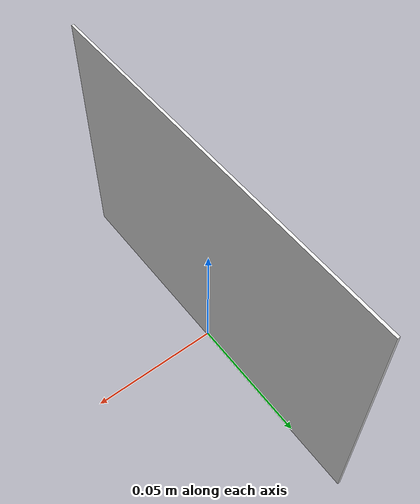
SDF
<?xml version="1.0" ?>
<sdf version="1.5">
    <model name='dog_white'>
        <static>1</static>
        <link name='link'>
            <collision name='collision'>
            <geometry>
                <box>
                <size>0.001 0.15 0.1</size>
                </box>
            </geometry>
            </collision>
            <visual name='visual'>
            <geometry>
                <box>
                <size>0.001 0.15 0.1</size>
                </box>
            </geometry>
            <material>
                <script>
                    <uri>model://dog_white/materials/scripts</uri>
                    <uri>model://dog_white/materials/textures</uri>
                    <name>WhiteDogImage</name>
                </script>
            </material>
            </visual>
        </link>
        <pose frame=''>0 0 0.05 0 0 0 1</pose>
    </model>
</sdf>
